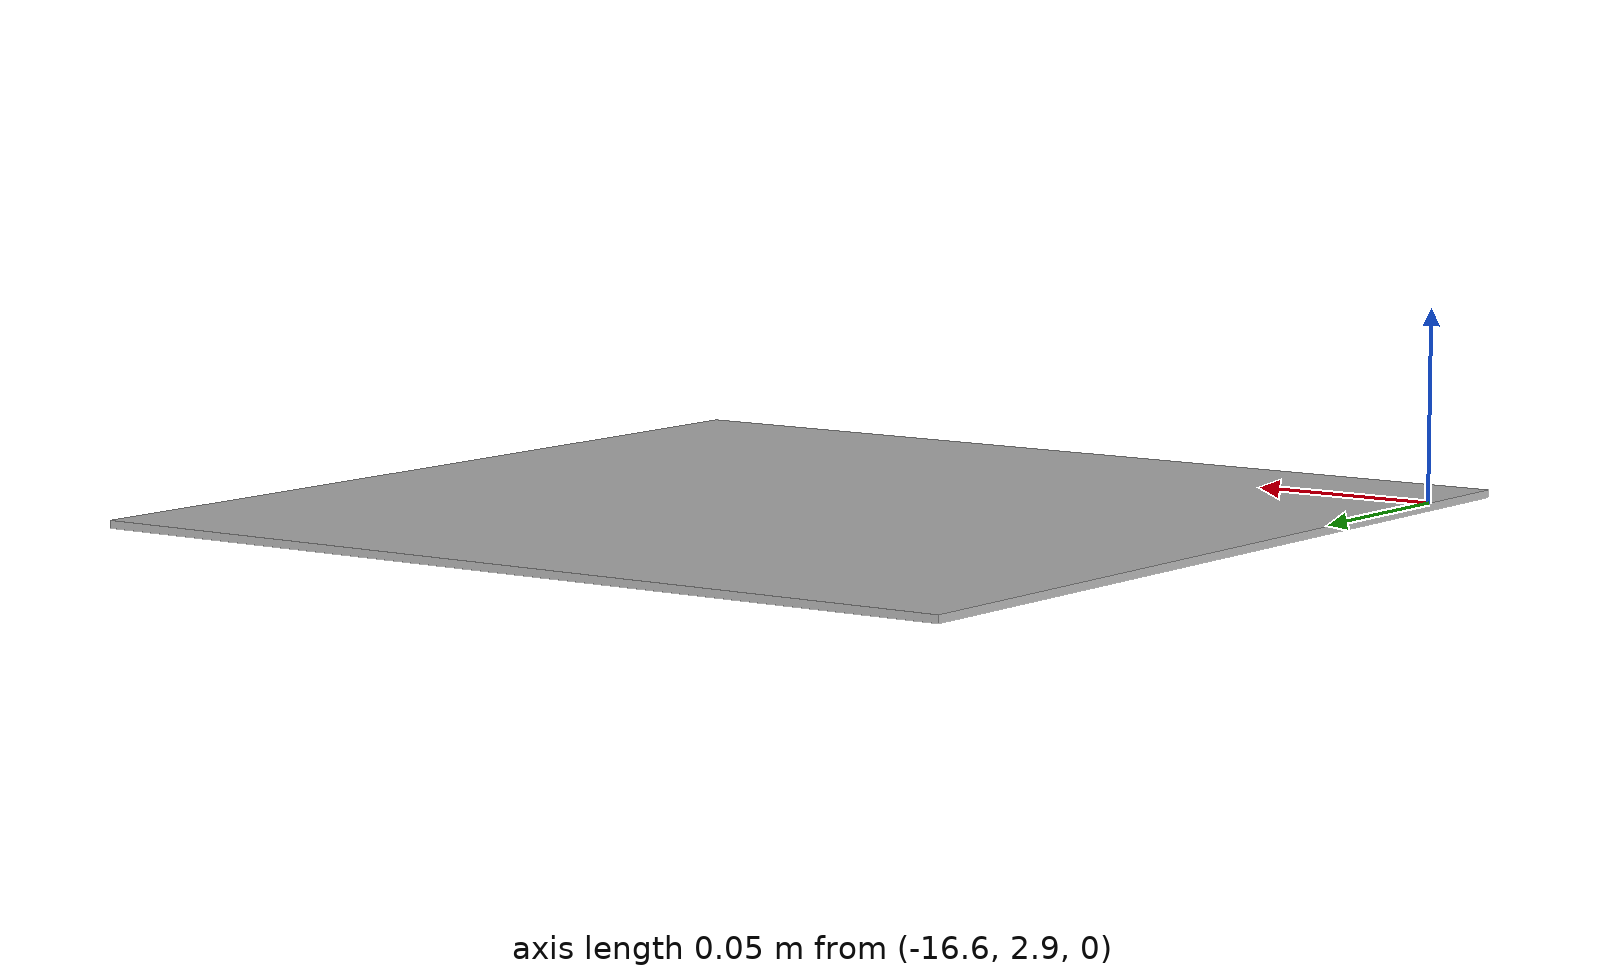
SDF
<?xml version="1.0" ?>
<sdf version="1.5">
    <model name='road_inter_new'>
      <static>1</static>
      <link name='link'>
        <collision name='collision'>
          <geometry>
            <box>
              <size>0.25 0.25 0.002</size>
            </box>
          </geometry>
          <max_contacts>10</max_contacts>
          <surface>
            <contact>
              <ode/>
            </contact>
            <bounce/>
            <friction>
              <ode/>
            </friction>
          </surface>
        </collision>
        <visual name='visual'>
          <cast_shadows>0</cast_shadows>
          <geometry>
            <box>
              <size>0.25 0.25 0.002</size>
            </box>
          </geometry>
          <material>
            <script>
              <uri>model://road_inter_new/materials/scripts</uri>
              <uri>model://road_inter_new/materials/textures</uri>
              <name>vrc/inter</name>
            </script>
          </material>
        </visual>
        <self_collide>0</self_collide>
        <kinematic>0</kinematic>
        <gravity>1</gravity>
      </link>
      <pose>-16.4785 3 0 0 -0 0</pose>
    </model>
</sdf>
